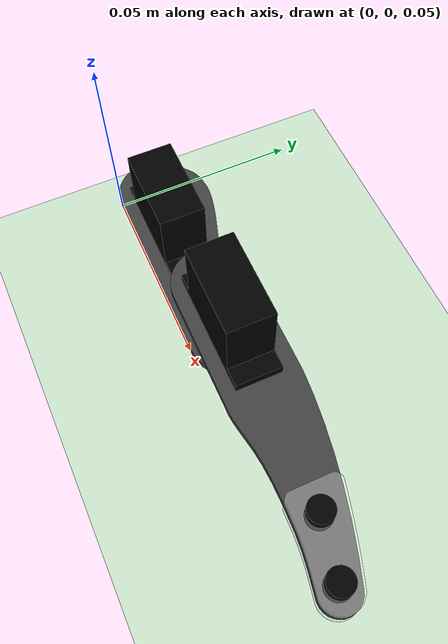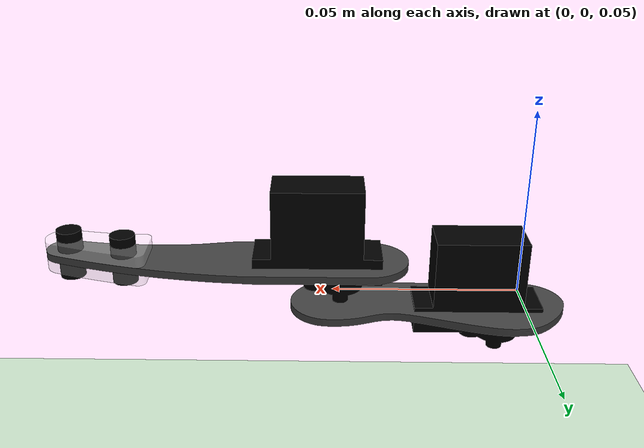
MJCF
<mujoco>
    <compiler angle="radian" coordinate="local" inertiafromgeom="true" settotalmass="0.6"/>
    <default>
        <default class="visual">
            <geom group="2" type="mesh" contype="0" conaffinity="0"/>
        </default>
        <default class="collision">
            <geom group="3" type="mesh" condim="4" solref="0.004 1" solimp="0.9 0.95 0.001 0.5 2"/>
        </default>
    </default>
    <default>
        <joint armature=".0001" damping="0.025" limited="true" solimplimit="0 .8 .03" solreflimit=".02 1" range="-1.57 1.57"/>
        <geom friction="0.9 0.2 0.1" contype="1" conaffinity="1" rgba="0.8 0.6 .4 1" solimp="0.92 0.96 0.002" solref="0.005 1" condim="4"/>
    </default>
    <compiler inertiafromgeom="true" />
    <size nstack="300000" nuser_geom="1"/>
    <option gravity="0 0 -9.81" timestep="0.001" integrator="RK4"/>
    <asset>
        <texture builtin="gradient" height="100" rgb1="1 1 1" rgb2="0 0 0" type="skybox" width="100"/>
        <texture builtin="flat" height="1278" mark="cross" markrgb="1 1 1" name="texgeom" random="0.01" rgb1="0.8 0.6 0.4" rgb2="0.8 0.6 0.4" type="cube" width="127"/>
        <texture builtin="checker" height="100" name="texplane" rgb1="0 0 0" rgb2="0.8 0.8 0.8" type="2d" width="100"/>
        <material name="MatPlane" reflectance="0.5" shininess="1" specular="1" texrepeat="60 60" texture="texplane"/>
        <material name="geom" texture="texgeom" texuniform="true"/>
        <mesh name="leg_a" file="leg_a.obj" scale="0.001 0.001 0.001" />
        <mesh name="leg_b" file="leg_b.obj" scale="0.001 0.001 0.001" />
        <mesh name="motor" file="motor.obj" scale="0.001 0.001 0.001" />
        <mesh name="acrylic" file="acrylic.obj" scale="0.001 0.001 0.001" />
    </asset>

    <worldbody>
        <light cutoff="100" diffuse="1 1 1" dir="-0 0 -1.3" directional="true" exponent="1" pos="0 0 1.3" specular=".1 .1 .1"/>
        <geom conaffinity="2" condim="3" material="MatPlane" name="floor" pos="0 0 0" rgba="0.8 0.9 0.8 1" size="2 2 2" type="plane"/>
        <body name="front_left_hip" pos="0.00 0.0 0.05" >

            <geom name="leg_b" mass="0.00828" mesh="leg_a" rgba="0.26 0.26 0.26 1" class="collision"/>
            <geom mesh="leg_b" rgba="0.26 0.26 0.26 1" class="visual"/>

            <geom name="motor_b" mass="0.009" mesh="motor" rgba="0.0 0.0 0.0 1" pos="0.01315 0.0096 0.0" euler="0 0 1.57075" class="collision"/>
            <geom mesh="motor" rgba="0.0 0.0 0.0 1" pos="0.01315 0.0096 0.0" euler="0 0 1.57075" class="visual"/>

            <joint name="front_left_hip" type="hinge" axis="0 0 1" pos="0.0069 0.0096 0.0"/>

            <body name="front_left_knee" pos="0.041 0.0 0.0119" >

                <geom name="leg_a" mass="0.00730" mesh="leg_a" rgba="0.26 0.26 0.26 1" class="collision"/>
                <geom mesh="leg_a" rgba="0.26 0.26 0.26 1" class="visual"/>

                <geom name="motor_a" mass="0.009" mesh="motor" rgba="0.0 0.0 0.0 1" pos="0.01315 0.0096 0.0015" euler="0 0 1.57075" class="collision"/>
                <geom mesh="motor" rgba="0.0 0.0 0.0 1" pos="0.01315 0.0096 0.0015" euler="0 0 1.57075" class="visual"/>

                <geom name="acrylic_r" mass="0.00158" mesh="acrylic" rgba="0.0 0.0 0.0 1" pos="0.0 0.0 0.0" class="collision"/>
                <geom mesh="acrylic" rgba="1.0 1.0 1.0 0.3" pos="0.0 0.0 0.0" class="visual"/>

                <geom name="acrylic_l" mass="0.00158" mesh="acrylic" rgba="0.0 0.0 0.0 1" pos="0.0 0.0 -0.005" class="collision"/>
                <geom mesh="acrylic" rgba="1.0 1.0 1.0 0.3" pos="0.0 0.0 -0.005" class="visual"/>

                <!-- rivet -->
                <geom type="cylinder" size="0.00325 0.0065" rgba="0.0 0.0 0.0 1" pos="0.063 0.008 0.001"/>
                <geom type="cylinder" size="0.00325 0.0065" rgba="0.0 0.0 0.0 1" pos="0.0775 0.005 0.001"/>

                <joint name="front_left_knee" type="hinge" axis="0 0 1" pos="0.00815 0.0096 0.0" range="0.0 2.59"/>
            </body>
        </body>
    </worldbody>
    <actuator>
        <position joint="front_left_hip" kp="20.0" kv="0" ctrlrange="-1.57075 1.57075" forcerange="-0.3 0.3"/>
        <position joint="front_left_knee" kp="20.0" kv="0" ctrlrange="0.0 2.59" forcerange="-0.3 0.3"/>
    </actuator>

</mujoco>
